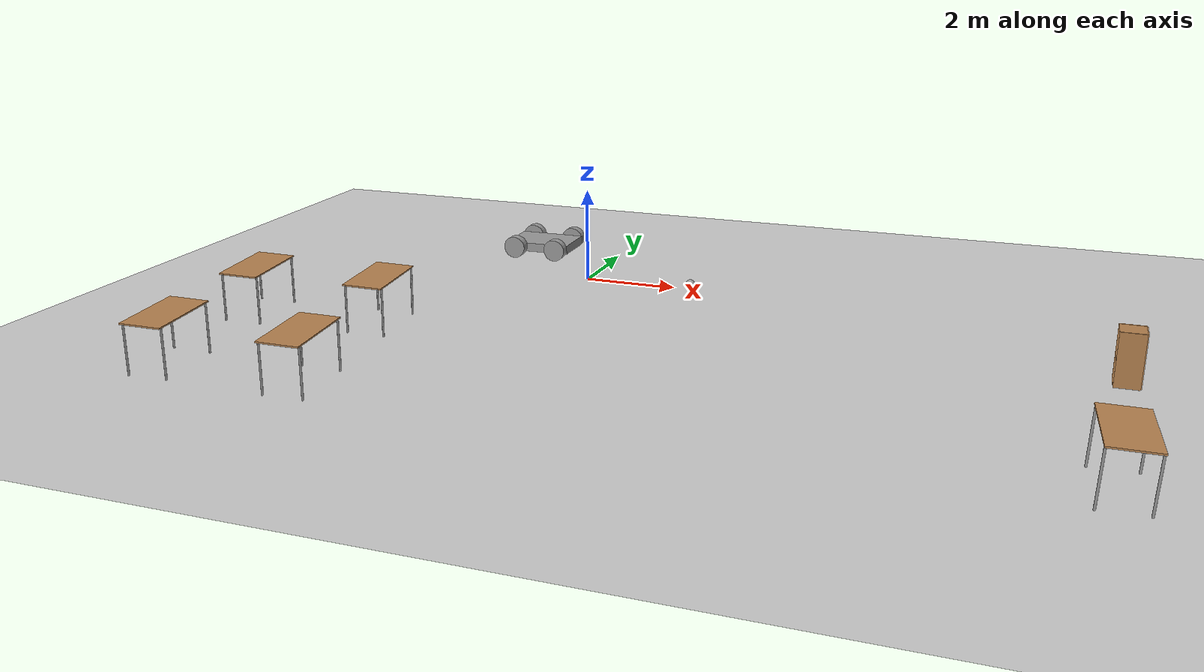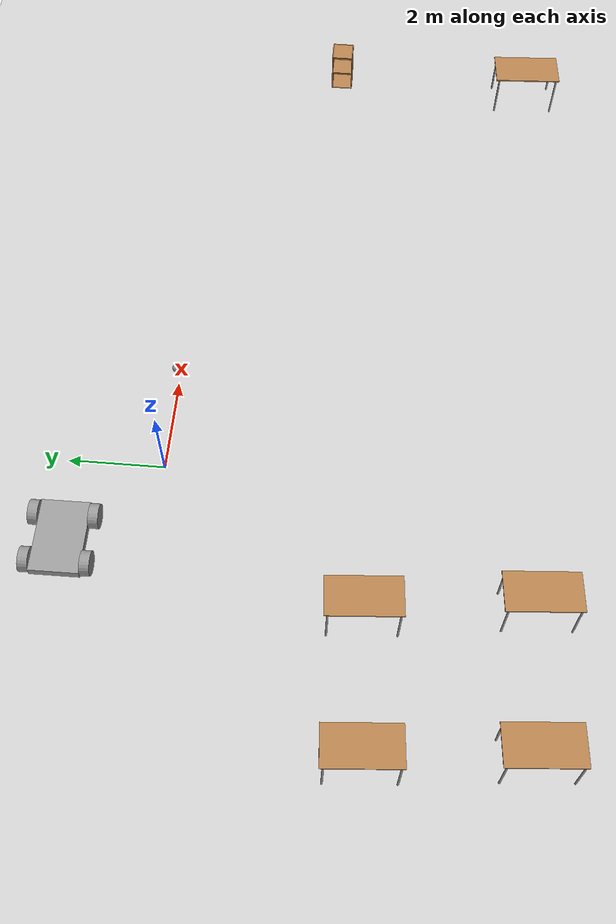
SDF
<sdf version="1.6">
 <world name="default">
  <model name="ground_plane">
   <static>1</static>
   <link name="link">
    <collision name="collision">
     <geometry><plane><normal>0 0 1</normal><size>100 100</size></plane></geometry>
     <surface><friction><ode><mu>100</mu><mu2>50</mu2></ode></friction></surface>
    </collision>
    <visual name="visual">
     <cast_shadows>0</cast_shadows>
     <geometry><plane><normal>0 0 1</normal><size>100 100</size></plane></geometry>
     <material>
      <script><uri>file://media/materials/scripts/gazebo.material</uri><name>Gazebo/Grey</name></script>
     </material>
    </visual>
   </link>
  </model>
  <model name="model_1">
   <link name="link_0">
    <pose>0 0 -0.016 0 -0 0</pose>
    <inertial>
     <mass>1</mass>
     <inertia>
      <ixx>0.166667</ixx>
      <ixy>0</ixy>
      <ixz>0</ixz>
      <iyy>0.166667</iyy>
      <iyz>0</iyz>
      <izz>0.166667</izz>
     </inertia>
    </inertial>
    <visual name="visual">
     <geometry><box><size>1.5 1 0.2</size></box></geometry>
     <material>
      <lighting>1</lighting>
      <script><uri>file://media/materials/scripts/gazebo.material</uri><name>Gazebo/Grey</name></script>
      <shader type="pixel"><normal_map>__default__</normal_map></shader>
      <ambient>0.3 0.3 0.3 1</ambient>
      <diffuse>0.7 0.7 0.7 1</diffuse>
      <specular>0.01 0.01 0.01 1</specular>
      <emissive>0 0 0 1</emissive>
     </material>
    </visual>
    <collision name="collision">
     <geometry><box><size>1.5 1 0.2</size></box></geometry>
     <surface>
      <friction>
       <ode><mu>1</mu><mu2>1</mu2><fdir1>0 0 0</fdir1><slip1>0</slip1><slip2>0</slip2></ode>
       <torsional>
        <coefficient>1</coefficient>
        <patch_radius>0</patch_radius>
        <surface_radius>0</surface_radius>
        <use_patch_radius>1</use_patch_radius>
        <ode><slip>0</slip></ode>
       </torsional>
      </friction>
      <bounce><restitution_coefficient>0</restitution_coefficient><threshold>1e+06</threshold></bounce>
      <contact>
       <collide_without_contact>0</collide_without_contact>
       <collide_without_contact_bitmask>1</collide_without_contact_bitmask>
       <collide_bitmask>1</collide_bitmask>
       <ode>
        <soft_cfm>0</soft_cfm>
        <soft_erp>0.2</soft_erp>
        <kp>1e+13</kp>
        <kd>1</kd>
        <max_vel>0.01</max_vel>
        <min_depth>0</min_depth>
       </ode>
       <bullet>
        <split_impulse>1</split_impulse>
        <split_impulse_penetration_threshold>-0.01</split_impulse_penetration_threshold>
        <soft_cfm>0</soft_cfm>
        <soft_erp>0.2</soft_erp>
        <kp>1e+13</kp>
        <kd>1</kd>
       </bullet>
      </contact>
     </surface>
    </collision>
   </link>
   <link name="link_1">
    <pose>0.5 -0.6 0.004 -1.57079 0 0</pose>
    <inertial>
     <mass>1</mass>
     <inertia><ixx>0.145833</ixx><ixy>0</ixy><ixz>0</ixz><iyy>0.145833</iyy><iyz>0</iyz><izz>0.125</izz></inertia>
    </inertial>
    <visual name="visual">
     <geometry><cylinder><radius>0.25</radius><length>0.2</length></cylinder></geometry>
     <material>
      <lighting>1</lighting>
      <script><uri>file://media/materials/scripts/gazebo.material</uri><name>Gazebo/Grey</name></script>
      <shader type="pixel"><normal_map>__default__</normal_map></shader>
      <ambient>0.3 0.3 0.3 1</ambient>
      <diffuse>0.7 0.7 0.7 1</diffuse>
      <specular>0.01 0.01 0.01 1</specular>
      <emissive>0 0 0 1</emissive>
     </material>
    </visual>
    <collision name="collision">
     <geometry><cylinder><radius>0.25</radius><length>0.2</length></cylinder></geometry>
     <surface>
      <friction>
       <ode><mu>1</mu><mu2>1</mu2><fdir1>0 0 0</fdir1><slip1>0</slip1><slip2>0</slip2></ode>
       <torsional>
        <coefficient>1</coefficient>
        <patch_radius>0</patch_radius>
        <surface_radius>0</surface_radius>
        <use_patch_radius>1</use_patch_radius>
        <ode><slip>0</slip></ode>
       </torsional>
      </friction>
      <bounce><restitution_coefficient>0</restitution_coefficient><threshold>1e+06</threshold></bounce>
      <contact>
       <collide_without_contact>0</collide_without_contact>
       <collide_without_contact_bitmask>1</collide_without_contact_bitmask>
       <collide_bitmask>1</collide_bitmask>
       <ode>
        <soft_cfm>0</soft_cfm>
        <soft_erp>0.2</soft_erp>
        <kp>1e+13</kp>
        <kd>1</kd>
        <max_vel>0.01</max_vel>
        <min_depth>0</min_depth>
       </ode>
       <bullet>
        <split_impulse>1</split_impulse>
        <split_impulse_penetration_threshold>-0.01</split_impulse_penetration_threshold>
        <soft_cfm>0</soft_cfm>
        <soft_erp>0.2</soft_erp>
        <kp>1e+13</kp>
        <kd>1</kd>
       </bullet>
      </contact>
     </surface>
    </collision>
   </link>
   <link name="link_1_clone">
    <pose>0.5 0.6 0.004 1.57079 -0 0</pose>
    <inertial>
     <mass>1</mass>
     <inertia><ixx>0.145833</ixx><ixy>0</ixy><ixz>0</ixz><iyy>0.145833</iyy><iyz>0</iyz><izz>0.125</izz></inertia>
    </inertial>
    <visual name="visual">
     <geometry><cylinder><radius>0.25</radius><length>0.2</length></cylinder></geometry>
     <material>
      <lighting>1</lighting>
      <script><uri>file://media/materials/scripts/gazebo.material</uri><name>Gazebo/Grey</name></script>
      <shader type="pixel"><normal_map>__default__</normal_map></shader>
      <ambient>0.3 0.3 0.3 1</ambient>
      <diffuse>0.7 0.7 0.7 1</diffuse>
      <specular>0.01 0.01 0.01 1</specular>
      <emissive>0 0 0 1</emissive>
     </material>
    </visual>
    <collision name="collision">
     <geometry><cylinder><radius>0.25</radius><length>0.2</length></cylinder></geometry>
     <surface>
      <friction>
       <ode><mu>1</mu><mu2>1</mu2><fdir1>0 0 0</fdir1><slip1>0</slip1><slip2>0</slip2></ode>
       <torsional>
        <coefficient>1</coefficient>
        <patch_radius>0</patch_radius>
        <surface_radius>0</surface_radius>
        <use_patch_radius>1</use_patch_radius>
        <ode><slip>0</slip></ode>
       </torsional>
      </friction>
      <bounce><restitution_coefficient>0</restitution_coefficient><threshold>1e+06</threshold></bounce>
      <contact>
       <collide_without_contact>0</collide_without_contact>
       <collide_without_contact_bitmask>1</collide_without_contact_bitmask>
       <collide_bitmask>1</collide_bitmask>
       <ode>
        <soft_cfm>0</soft_cfm>
        <soft_erp>0.2</soft_erp>
        <kp>1e+13</kp>
        <kd>1</kd>
        <max_vel>0.01</max_vel>
        <min_depth>0</min_depth>
       </ode>
       <bullet>
        <split_impulse>1</split_impulse>
        <split_impulse_penetration_threshold>-0.01</split_impulse_penetration_threshold>
        <soft_cfm>0</soft_cfm>
        <soft_erp>0.2</soft_erp>
        <kp>1e+13</kp>
        <kd>1</kd>
       </bullet>
      </contact>
     </surface>
    </collision>
   </link>
   <link name="link_1_clone_0">
    <pose>-0.5 0.6 0.004 1.57079 -0 0</pose>
    <inertial>
     <mass>1</mass>
     <inertia><ixx>0.145833</ixx><ixy>0</ixy><ixz>0</ixz><iyy>0.145833</iyy><iyz>0</iyz><izz>0.125</izz></inertia>
    </inertial>
    <visual name="visual">
     <geometry><cylinder><radius>0.25</radius><length>0.2</length></cylinder></geometry>
     <material>
      <lighting>1</lighting>
      <script><uri>file://media/materials/scripts/gazebo.material</uri><name>Gazebo/Grey</name></script>
      <shader type="pixel"><normal_map>__default__</normal_map></shader>
      <ambient>0.3 0.3 0.3 1</ambient>
      <diffuse>0.7 0.7 0.7 1</diffuse>
      <specular>0.01 0.01 0.01 1</specular>
      <emissive>0 0 0 1</emissive>
     </material>
    </visual>
    <collision name="collision">
     <geometry><cylinder><radius>0.25</radius><length>0.2</length></cylinder></geometry>
     <surface>
      <friction>
       <ode><mu>1</mu><mu2>1</mu2><fdir1>0 0 0</fdir1><slip1>0</slip1><slip2>0</slip2></ode>
       <torsional>
        <coefficient>1</coefficient>
        <patch_radius>0</patch_radius>
        <surface_radius>0</surface_radius>
        <use_patch_radius>1</use_patch_radius>
        <ode><slip>0</slip></ode>
       </torsional>
      </friction>
      <bounce><restitution_coefficient>0</restitution_coefficient><threshold>1e+06</threshold></bounce>
      <contact>
       <collide_without_contact>0</collide_without_contact>
       <collide_without_contact_bitmask>1</collide_without_contact_bitmask>
       <collide_bitmask>1</collide_bitmask>
       <ode>
        <soft_cfm>0</soft_cfm>
        <soft_erp>0.2</soft_erp>
        <kp>1e+13</kp>
        <kd>1</kd>
        <max_vel>0.01</max_vel>
        <min_depth>0</min_depth>
       </ode>
       <bullet>
        <split_impulse>1</split_impulse>
        <split_impulse_penetration_threshold>-0.01</split_impulse_penetration_threshold>
        <soft_cfm>0</soft_cfm>
        <soft_erp>0.2</soft_erp>
        <kp>1e+13</kp>
        <kd>1</kd>
       </bullet>
      </contact>
     </surface>
    </collision>
   </link>
   <link name="link_1_clone_1">
    <pose>-0.5 -0.6 0.004 -1.57079 0 0</pose>
    <inertial>
     <mass>1</mass>
     <inertia><ixx>0.145833</ixx><ixy>0</ixy><ixz>0</ixz><iyy>0.145833</iyy><iyz>0</iyz><izz>0.125</izz></inertia>
    </inertial>
    <visual name="visual">
     <geometry><cylinder><radius>0.25</radius><length>0.2</length></cylinder></geometry>
     <material>
      <lighting>1</lighting>
      <script><uri>file://media/materials/scripts/gazebo.material</uri><name>Gazebo/Grey</name></script>
      <shader type="pixel"><normal_map>__default__</normal_map></shader>
      <ambient>0.3 0.3 0.3 1</ambient>
      <diffuse>0.7 0.7 0.7 1</diffuse>
      <specular>0.01 0.01 0.01 1</specular>
      <emissive>0 0 0 1</emissive>
     </material>
    </visual>
    <collision name="collision">
     <geometry><cylinder><radius>0.25</radius><length>0.2</length></cylinder></geometry>
     <surface>
      <friction>
       <ode><mu>1</mu><mu2>1</mu2><fdir1>0 0 0</fdir1><slip1>0</slip1><slip2>0</slip2></ode>
       <torsional>
        <coefficient>1</coefficient>
        <patch_radius>0</patch_radius>
        <surface_radius>0</surface_radius>
        <use_patch_radius>1</use_patch_radius>
        <ode><slip>0</slip></ode>
       </torsional>
      </friction>
      <bounce><restitution_coefficient>0</restitution_coefficient><threshold>1e+06</threshold></bounce>
      <contact>
       <collide_without_contact>0</collide_without_contact>
       <collide_without_contact_bitmask>1</collide_without_contact_bitmask>
       <collide_bitmask>1</collide_bitmask>
       <ode>
        <soft_cfm>0</soft_cfm>
        <soft_erp>0.2</soft_erp>
        <kp>1e+13</kp>
        <kd>1</kd>
        <max_vel>0.01</max_vel>
        <min_depth>0</min_depth>
       </ode>
       <bullet>
        <split_impulse>1</split_impulse>
        <split_impulse_penetration_threshold>-0.01</split_impulse_penetration_threshold>
        <soft_cfm>0</soft_cfm>
        <soft_erp>0.2</soft_erp>
        <kp>1e+13</kp>
        <kd>1</kd>
       </bullet>
      </contact>
     </surface>
    </collision>
   </link>
   <joint name="link_0_JOINT_1" type="revolute">
    <parent>link_0</parent>
    <child>link_1_clone</child>
    <axis>
     <xyz>0 0 1</xyz>
     <use_parent_model_frame>0</use_parent_model_frame>
     <limit>
      <lower>-1.79769e+308</lower>
      <upper>1.79769e+308</upper>
      <effort>-1</effort>
      <velocity>-1</velocity>
     </limit>
     <dynamics>
      <spring_reference>0</spring_reference>
      <spring_stiffness>0</spring_stiffness>
      <damping>0</damping>
     </dynamics>
    </axis>
    <physics>
     <ode><limit><cfm>0</cfm><erp>0.2</erp></limit><suspension><cfm>0</cfm><erp>0.2</erp></suspension></ode>
    </physics>
   </joint>
   <joint name="link_0_JOINT_2" type="revolute">
    <parent>link_0</parent>
    <child>link_1</child>
    <axis>
     <xyz>0 0 1</xyz>
     <use_parent_model_frame>0</use_parent_model_frame>
     <limit>
      <lower>-1.79769e+308</lower>
      <upper>1.79769e+308</upper>
      <effort>-1</effort>
      <velocity>-1</velocity>
     </limit>
     <dynamics>
      <spring_reference>0</spring_reference>
      <spring_stiffness>0</spring_stiffness>
      <damping>0</damping>
     </dynamics>
    </axis>
    <physics>
     <ode><limit><cfm>0</cfm><erp>0.2</erp></limit><suspension><cfm>0</cfm><erp>0.2</erp></suspension></ode>
    </physics>
   </joint>
   <joint name="link_0_JOINT_3" type="revolute">
    <parent>link_0</parent>
    <child>link_1_clone_0</child>
    <axis>
     <xyz>0 0 1</xyz>
     <use_parent_model_frame>0</use_parent_model_frame>
     <limit>
      <lower>-1.79769e+308</lower>
      <upper>1.79769e+308</upper>
      <effort>-1</effort>
      <velocity>-1</velocity>
     </limit>
     <dynamics>
      <spring_reference>0</spring_reference>
      <spring_stiffness>0</spring_stiffness>
      <damping>0</damping>
     </dynamics>
    </axis>
    <physics>
     <ode><limit><cfm>0</cfm><erp>0.2</erp></limit><suspension><cfm>0</cfm><erp>0.2</erp></suspension></ode>
    </physics>
   </joint>
   <joint name="link_0_JOINT_4" type="revolute">
    <parent>link_0</parent>
    <child>link_1_clone_1</child>
    <axis>
     <xyz>0 0 1</xyz>
     <use_parent_model_frame>0</use_parent_model_frame>
     <limit>
      <lower>-1.79769e+308</lower>
      <upper>1.79769e+308</upper>
      <effort>-1</effort>
      <velocity>-1</velocity>
     </limit>
     <dynamics>
      <spring_reference>0</spring_reference>
      <spring_stiffness>0</spring_stiffness>
      <damping>0</damping>
     </dynamics>
    </axis>
    <physics>
     <ode><limit><cfm>0</cfm><erp>0.2</erp></limit><suspension><cfm>0</cfm><erp>0.2</erp></suspension></ode>
    </physics>
   </joint>
   <static>0</static>
   <pose>-1.79499 1.77846 0.246001 0 -0 0.008395</pose>
  </model>
  <model name="cabinet">
   <static>1</static>
   <link name="cabinet_bottom_plate">
    <inertial>
     <pose>0 0 -1 0 -0 0</pose>
     <inertia><ixx>2.05</ixx><ixy>0</ixy><ixz>0</ixz><iyy>2.05</iyy><iyz>0</iyz><izz>2.05</izz></inertia>
     <mass>25</mass>
    </inertial>
    <collision name="cabinet_bottom_plate_geom">
     <pose>0 0 0.01 0 -0 0</pose>
     <geometry><box><size>0.45 0.45 0.02</size></box></geometry>
    </collision>
    <visual name="cabinet_bottom_plate_geom_visual">
     <pose>0 0 0.01 0 -0 0</pose>
     <geometry><box><size>0.45 0.45 0.02</size></box></geometry>
     <material>
      <script><uri>file://media/materials/scripts/gazebo.material</uri><name>Gazebo/Wood</name></script>
     </material>
    </visual>
    <collision name="cabinet_bottom_plate_geom_cabinet_back_plate">
     <pose>0.235 0 0.51 0 -0 0</pose>
     <geometry><box><size>0.02 0.45 1.02</size></box></geometry>
    </collision>
    <visual name="cabinet_bottom_plate_geom_cabinet_back_plate_visual">
     <pose>0.235 0 0.51 0 -0 0</pose>
     <geometry><box><size>0.02 0.45 1.02</size></box></geometry>
     <material>
      <script><uri>file://media/materials/scripts/gazebo.material</uri><name>Gazebo/Wood</name></script>
     </material>
    </visual>
    <collision name="cabinet_bottom_plate_geom_cabinet_left_plate">
     <pose>0 0.235 0.51 0 -0 0</pose>
     <geometry><box><size>0.45 0.02 1.02</size></box></geometry>
    </collision>
    <visual name="cabinet_bottom_plate_geom_cabinet_left_plate_visual">
     <pose>0 0.235 0.51 0 -0 0</pose>
     <geometry><box><size>0.45 0.02 1.02</size></box></geometry>
     <material>
      <script><uri>file://media/materials/scripts/gazebo.material</uri><name>Gazebo/Wood</name></script>
     </material>
    </visual>
    <collision name="cabinet_bottom_plate_geom_cabinet_middle_plate">
     <pose>0 0 0.51 0 -0 0</pose>
     <geometry><box><size>0.45 0.45 0.02</size></box></geometry>
    </collision>
    <visual name="cabinet_bottom_plate_geom_cabinet_middle_plate_visual">
     <pose>0 0 0.51 0 -0 0</pose>
     <geometry><box><size>0.45 0.45 0.02</size></box></geometry>
     <material>
      <script><uri>file://media/materials/scripts/gazebo.material</uri><name>Gazebo/Wood</name></script>
     </material>
    </visual>
    <collision name="cabinet_bottom_plate_geom_cabinet_right_plate">
     <pose>0 -0.235 0.51 0 -0 0</pose>
     <geometry><box><size>0.45 0.02 1.02</size></box></geometry>
    </collision>
    <visual name="cabinet_bottom_plate_geom_cabinet_right_plate_visual">
     <pose>0 -0.235 0.51 0 -0 0</pose>
     <geometry><box><size>0.45 0.02 1.02</size></box></geometry>
     <material>
      <script><uri>file://media/materials/scripts/gazebo.material</uri><name>Gazebo/Wood</name></script>
     </material>
    </visual>
    <collision name="cabinet_bottom_plate_geom_cabinet_top_plate">
     <pose>0 0 1.01 0 -0 0</pose>
     <geometry><box><size>0.45 0.45 0.02</size></box></geometry>
    </collision>
    <visual name="cabinet_bottom_plate_geom_cabinet_top_plate_visual">
     <pose>0 0 1.01 0 -0 0</pose>
     <geometry><box><size>0.45 0.45 0.02</size></box></geometry>
     <material>
      <script><uri>file://media/materials/scripts/gazebo.material</uri><name>Gazebo/Wood</name></script>
     </material>
    </visual>
   </link>
   <pose>11.1239 -2.80819 0 0 -0 0</pose>
  </model>
  <model name="table_clone_2">
   <static>1</static>
   <link name="link">
    <collision name="surface">
     <pose>0 0 1 0 -0 0</pose>
     <geometry><box><size>1.5 0.8 0.03</size></box></geometry>
     <surface><friction><ode><mu>0.6</mu><mu2>0.6</mu2></ode></friction></surface>
    </collision>
    <visual name="visual1">
     <pose>0 0 1 0 -0 0</pose>
     <geometry><box><size>1.5 0.8 0.03</size></box></geometry>
     <material>
      <script><uri>file://media/materials/scripts/gazebo.material</uri><name>Gazebo/Wood</name></script>
     </material>
    </visual>
    <collision name="front_left_leg">
     <pose>0.68 0.38 0.5 0 -0 0</pose>
     <geometry><cylinder><radius>0.02</radius><length>1</length></cylinder></geometry>
    </collision>
    <visual name="front_left_leg">
     <pose>0.68 0.38 0.5 0 -0 0</pose>
     <geometry><cylinder><radius>0.02</radius><length>1</length></cylinder></geometry>
     <material>
      <script><uri>file://media/materials/scripts/gazebo.material</uri><name>Gazebo/Grey</name></script>
     </material>
    </visual>
    <collision name="front_right_leg">
     <pose>0.68 -0.38 0.5 0 -0 0</pose>
     <geometry><cylinder><radius>0.02</radius><length>1</length></cylinder></geometry>
    </collision>
    <visual name="front_right_leg">
     <pose>0.68 -0.38 0.5 0 -0 0</pose>
     <geometry><cylinder><radius>0.02</radius><length>1</length></cylinder></geometry>
     <material>
      <script><uri>file://media/materials/scripts/gazebo.material</uri><name>Gazebo/Grey</name></script>
     </material>
    </visual>
    <collision name="back_right_leg">
     <pose>-0.68 -0.38 0.5 0 -0 0</pose>
     <geometry><cylinder><radius>0.02</radius><length>1</length></cylinder></geometry>
    </collision>
    <visual name="back_right_leg">
     <pose>-0.68 -0.38 0.5 0 -0 0</pose>
     <geometry><cylinder><radius>0.02</radius><length>1</length></cylinder></geometry>
     <material>
      <script><uri>file://media/materials/scripts/gazebo.material</uri><name>Gazebo/Grey</name></script>
     </material>
    </visual>
    <collision name="back_left_leg">
     <pose>-0.68 0.38 0.5 0 -0 0</pose>
     <geometry><cylinder><radius>0.02</radius><length>1</length></cylinder></geometry>
    </collision>
    <visual name="back_left_leg">
     <pose>-0.68 0.38 0.5 0 -0 0</pose>
     <geometry><cylinder><radius>0.02</radius><length>1</length></cylinder></geometry>
     <material>
      <script><uri>file://media/materials/scripts/gazebo.material</uri><name>Gazebo/Grey</name></script>
     </material>
    </visual>
   </link>
   <pose>-5.2754 -7.48594 0 0.032441 -0.024996 1.64932</pose>
  </model>
  <model name="table_clone_3">
   <static>1</static>
   <link name="link">
    <collision name="surface">
     <pose>0 0 1 0 -0 0</pose>
     <geometry><box><size>1.5 0.8 0.03</size></box></geometry>
     <surface><friction><ode><mu>0.6</mu><mu2>0.6</mu2></ode></friction></surface>
    </collision>
    <visual name="visual1">
     <pose>0 0 1 0 -0 0</pose>
     <geometry><box><size>1.5 0.8 0.03</size></box></geometry>
     <material>
      <script><uri>file://media/materials/scripts/gazebo.material</uri><name>Gazebo/Wood</name></script>
     </material>
    </visual>
    <collision name="front_left_leg">
     <pose>0.68 0.38 0.5 0 -0 0</pose>
     <geometry><cylinder><radius>0.02</radius><length>1</length></cylinder></geometry>
    </collision>
    <visual name="front_left_leg">
     <pose>0.68 0.38 0.5 0 -0 0</pose>
     <geometry><cylinder><radius>0.02</radius><length>1</length></cylinder></geometry>
     <material>
      <script><uri>file://media/materials/scripts/gazebo.material</uri><name>Gazebo/Grey</name></script>
     </material>
    </visual>
    <collision name="front_right_leg">
     <pose>0.68 -0.38 0.5 0 -0 0</pose>
     <geometry><cylinder><radius>0.02</radius><length>1</length></cylinder></geometry>
    </collision>
    <visual name="front_right_leg">
     <pose>0.68 -0.38 0.5 0 -0 0</pose>
     <geometry><cylinder><radius>0.02</radius><length>1</length></cylinder></geometry>
     <material>
      <script><uri>file://media/materials/scripts/gazebo.material</uri><name>Gazebo/Grey</name></script>
     </material>
    </visual>
    <collision name="back_right_leg">
     <pose>-0.68 -0.38 0.5 0 -0 0</pose>
     <geometry><cylinder><radius>0.02</radius><length>1</length></cylinder></geometry>
    </collision>
    <visual name="back_right_leg">
     <pose>-0.68 -0.38 0.5 0 -0 0</pose>
     <geometry><cylinder><radius>0.02</radius><length>1</length></cylinder></geometry>
     <material>
      <script><uri>file://media/materials/scripts/gazebo.material</uri><name>Gazebo/Grey</name></script>
     </material>
    </visual>
    <collision name="back_left_leg">
     <pose>-0.68 0.38 0.5 0 -0 0</pose>
     <geometry><cylinder><radius>0.02</radius><length>1</length></cylinder></geometry>
    </collision>
    <visual name="back_left_leg">
     <pose>-0.68 0.38 0.5 0 -0 0</pose>
     <geometry><cylinder><radius>0.02</radius><length>1</length></cylinder></geometry>
     <material>
      <script><uri>file://media/materials/scripts/gazebo.material</uri><name>Gazebo/Grey</name></script>
     </material>
    </visual>
   </link>
   <pose>-5.54869 -4.34253 0 0.032441 -0.024996 1.64932</pose>
  </model>
  <model name="table_clone_4">
   <static>1</static>
   <link name="link">
    <collision name="surface">
     <pose>0 0 1 0 -0 0</pose>
     <geometry><box><size>1.5 0.8 0.03</size></box></geometry>
     <surface><friction><ode><mu>0.6</mu><mu2>0.6</mu2></ode></friction></surface>
    </collision>
    <visual name="visual1">
     <pose>0 0 1 0 -0 0</pose>
     <geometry><box><size>1.5 0.8 0.03</size></box></geometry>
     <material>
      <script><uri>file://media/materials/scripts/gazebo.material</uri><name>Gazebo/Wood</name></script>
     </material>
    </visual>
    <collision name="front_left_leg">
     <pose>0.68 0.38 0.5 0 -0 0</pose>
     <geometry><cylinder><radius>0.02</radius><length>1</length></cylinder></geometry>
    </collision>
    <visual name="front_left_leg">
     <pose>0.68 0.38 0.5 0 -0 0</pose>
     <geometry><cylinder><radius>0.02</radius><length>1</length></cylinder></geometry>
     <material>
      <script><uri>file://media/materials/scripts/gazebo.material</uri><name>Gazebo/Grey</name></script>
     </material>
    </visual>
    <collision name="front_right_leg">
     <pose>0.68 -0.38 0.5 0 -0 0</pose>
     <geometry><cylinder><radius>0.02</radius><length>1</length></cylinder></geometry>
    </collision>
    <visual name="front_right_leg">
     <pose>0.68 -0.38 0.5 0 -0 0</pose>
     <geometry><cylinder><radius>0.02</radius><length>1</length></cylinder></geometry>
     <material>
      <script><uri>file://media/materials/scripts/gazebo.material</uri><name>Gazebo/Grey</name></script>
     </material>
    </visual>
    <collision name="back_right_leg">
     <pose>-0.68 -0.38 0.5 0 -0 0</pose>
     <geometry><cylinder><radius>0.02</radius><length>1</length></cylinder></geometry>
    </collision>
    <visual name="back_right_leg">
     <pose>-0.68 -0.38 0.5 0 -0 0</pose>
     <geometry><cylinder><radius>0.02</radius><length>1</length></cylinder></geometry>
     <material>
      <script><uri>file://media/materials/scripts/gazebo.material</uri><name>Gazebo/Grey</name></script>
     </material>
    </visual>
    <collision name="back_left_leg">
     <pose>-0.68 0.38 0.5 0 -0 0</pose>
     <geometry><cylinder><radius>0.02</radius><length>1</length></cylinder></geometry>
    </collision>
    <visual name="back_left_leg">
     <pose>-0.68 0.38 0.5 0 -0 0</pose>
     <geometry><cylinder><radius>0.02</radius><length>1</length></cylinder></geometry>
     <material>
      <script><uri>file://media/materials/scripts/gazebo.material</uri><name>Gazebo/Grey</name></script>
     </material>
    </visual>
   </link>
   <pose>-2.46999 -7.50313 0 0.032441 -0.024996 1.64932</pose>
  </model>
  <model name="table_clone_5">
   <static>1</static>
   <link name="link">
    <collision name="surface">
     <pose>0 0 1 0 -0 0</pose>
     <geometry><box><size>1.5 0.8 0.03</size></box></geometry>
     <surface><friction><ode><mu>0.6</mu><mu2>0.6</mu2></ode></friction></surface>
    </collision>
    <visual name="visual1">
     <pose>0 0 1 0 -0 0</pose>
     <geometry><box><size>1.5 0.8 0.03</size></box></geometry>
     <material>
      <script><uri>file://media/materials/scripts/gazebo.material</uri><name>Gazebo/Wood</name></script>
     </material>
    </visual>
    <collision name="front_left_leg">
     <pose>0.68 0.38 0.5 0 -0 0</pose>
     <geometry><cylinder><radius>0.02</radius><length>1</length></cylinder></geometry>
    </collision>
    <visual name="front_left_leg">
     <pose>0.68 0.38 0.5 0 -0 0</pose>
     <geometry><cylinder><radius>0.02</radius><length>1</length></cylinder></geometry>
     <material>
      <script><uri>file://media/materials/scripts/gazebo.material</uri><name>Gazebo/Grey</name></script>
     </material>
    </visual>
    <collision name="front_right_leg">
     <pose>0.68 -0.38 0.5 0 -0 0</pose>
     <geometry><cylinder><radius>0.02</radius><length>1</length></cylinder></geometry>
    </collision>
    <visual name="front_right_leg">
     <pose>0.68 -0.38 0.5 0 -0 0</pose>
     <geometry><cylinder><radius>0.02</radius><length>1</length></cylinder></geometry>
     <material>
      <script><uri>file://media/materials/scripts/gazebo.material</uri><name>Gazebo/Grey</name></script>
     </material>
    </visual>
    <collision name="back_right_leg">
     <pose>-0.68 -0.38 0.5 0 -0 0</pose>
     <geometry><cylinder><radius>0.02</radius><length>1</length></cylinder></geometry>
    </collision>
    <visual name="back_right_leg">
     <pose>-0.68 -0.38 0.5 0 -0 0</pose>
     <geometry><cylinder><radius>0.02</radius><length>1</length></cylinder></geometry>
     <material>
      <script><uri>file://media/materials/scripts/gazebo.material</uri><name>Gazebo/Grey</name></script>
     </material>
    </visual>
    <collision name="back_left_leg">
     <pose>-0.68 0.38 0.5 0 -0 0</pose>
     <geometry><cylinder><radius>0.02</radius><length>1</length></cylinder></geometry>
    </collision>
    <visual name="back_left_leg">
     <pose>-0.68 0.38 0.5 0 -0 0</pose>
     <geometry><cylinder><radius>0.02</radius><length>1</length></cylinder></geometry>
     <material>
      <script><uri>file://media/materials/scripts/gazebo.material</uri><name>Gazebo/Grey</name></script>
     </material>
    </visual>
   </link>
   <pose>-2.82857 -4.20152 0 0.032441 -0.024996 1.64932</pose>
  </model>
  <model name="table_clone_6">
   <static>1</static>
   <link name="link">
    <collision name="surface">
     <pose>0 0 1 0 -0 0</pose>
     <geometry><box><size>1.5 0.8 0.03</size></box></geometry>
     <surface><friction><ode><mu>0.6</mu><mu2>0.6</mu2></ode></friction></surface>
    </collision>
    <visual name="visual1">
     <pose>0 0 1 0 -0 0</pose>
     <geometry><box><size>1.5 0.8 0.03</size></box></geometry>
     <material>
      <script><uri>file://media/materials/scripts/gazebo.material</uri><name>Gazebo/Wood</name></script>
     </material>
    </visual>
    <collision name="front_left_leg">
     <pose>0.68 0.38 0.5 0 -0 0</pose>
     <geometry><cylinder><radius>0.02</radius><length>1</length></cylinder></geometry>
    </collision>
    <visual name="front_left_leg">
     <pose>0.68 0.38 0.5 0 -0 0</pose>
     <geometry><cylinder><radius>0.02</radius><length>1</length></cylinder></geometry>
     <material>
      <script><uri>file://media/materials/scripts/gazebo.material</uri><name>Gazebo/Grey</name></script>
     </material>
    </visual>
    <collision name="front_right_leg">
     <pose>0.68 -0.38 0.5 0 -0 0</pose>
     <geometry><cylinder><radius>0.02</radius><length>1</length></cylinder></geometry>
    </collision>
    <visual name="front_right_leg">
     <pose>0.68 -0.38 0.5 0 -0 0</pose>
     <geometry><cylinder><radius>0.02</radius><length>1</length></cylinder></geometry>
     <material>
      <script><uri>file://media/materials/scripts/gazebo.material</uri><name>Gazebo/Grey</name></script>
     </material>
    </visual>
    <collision name="back_right_leg">
     <pose>-0.68 -0.38 0.5 0 -0 0</pose>
     <geometry><cylinder><radius>0.02</radius><length>1</length></cylinder></geometry>
    </collision>
    <visual name="back_right_leg">
     <pose>-0.68 -0.38 0.5 0 -0 0</pose>
     <geometry><cylinder><radius>0.02</radius><length>1</length></cylinder></geometry>
     <material>
      <script><uri>file://media/materials/scripts/gazebo.material</uri><name>Gazebo/Grey</name></script>
     </material>
    </visual>
    <collision name="back_left_leg">
     <pose>-0.68 0.38 0.5 0 -0 0</pose>
     <geometry><cylinder><radius>0.02</radius><length>1</length></cylinder></geometry>
    </collision>
    <visual name="back_left_leg">
     <pose>-0.68 0.38 0.5 0 -0 0</pose>
     <geometry><cylinder><radius>0.02</radius><length>1</length></cylinder></geometry>
     <material>
      <script><uri>file://media/materials/scripts/gazebo.material</uri><name>Gazebo/Grey</name></script>
     </material>
    </visual>
   </link>
   <pose>10.8704 -7.25489 0 0.032441 -0.024996 1.64932</pose>
  </model>
  <model name="my_ball">
   <link name="link_0">
    <pose>-0 0 0.1 0 -0 0</pose>
    <inertial>
     <mass>1</mass>
     <inertia><ixx>0.1</ixx><ixy>0</ixy><ixz>0</ixz><iyy>0.1</iyy><iyz>0</iyz><izz>0.1</izz></inertia>
    </inertial>
    <visual name="visual">
     <geometry><sphere><radius>0.1</radius></sphere></geometry>
     <material>
      <lighting>1</lighting>
      <script><uri>file://media/materials/scripts/gazebo.material</uri><name>Gazebo/Grey</name></script>
      <shader type="pixel"><normal_map>__default__</normal_map></shader>
      <ambient>1 1 1 1</ambient>
      <diffuse>1 1 1 1</diffuse>
      <specular>1 1 1 1</specular>
      <emissive>1 1 1 1</emissive>
     </material>
    </visual>
    <collision name="collision">
     <geometry><sphere><radius>0.1</radius></sphere></geometry>
     <surface>
      <friction>
       <ode><mu>1</mu><mu2>1</mu2><fdir1>0 0 0</fdir1><slip1>0</slip1><slip2>0</slip2></ode>
       <torsional>
        <coefficient>1</coefficient>
        <patch_radius>0</patch_radius>
        <surface_radius>0</surface_radius>
        <use_patch_radius>1</use_patch_radius>
        <ode><slip>0</slip></ode>
       </torsional>
      </friction>
      <bounce><restitution_coefficient>0</restitution_coefficient><threshold>1e+06</threshold></bounce>
      <contact>
       <collide_without_contact>0</collide_without_contact>
       <collide_without_contact_bitmask>1</collide_without_contact_bitmask>
       <collide_bitmask>1</collide_bitmask>
       <ode>
        <soft_cfm>0</soft_cfm>
        <soft_erp>0.2</soft_erp>
        <kp>1e+13</kp>
        <kd>1</kd>
        <max_vel>0.01</max_vel>
        <min_depth>0</min_depth>
       </ode>
       <bullet>
        <split_impulse>1</split_impulse>
        <split_impulse_penetration_threshold>-0.01</split_impulse_penetration_threshold>
        <soft_cfm>0</soft_cfm>
        <soft_erp>0.2</soft_erp>
        <kp>1e+13</kp>
        <kd>1</kd>
       </bullet>
      </contact>
     </surface>
    </collision>
   </link>
   <static>0</static>
   <pose>2.34784 0.087758 0 0 -0 0</pose>
  </model>
 </world>
</sdf>
